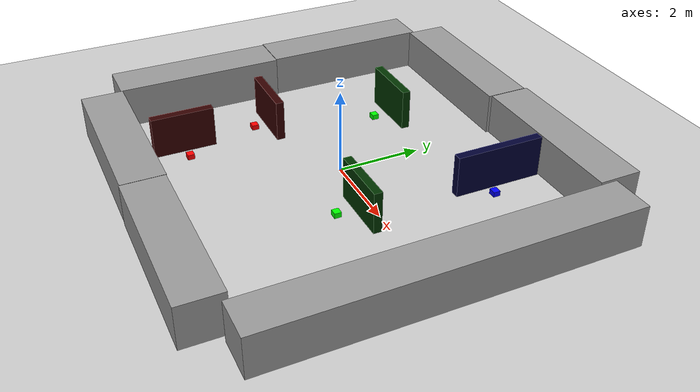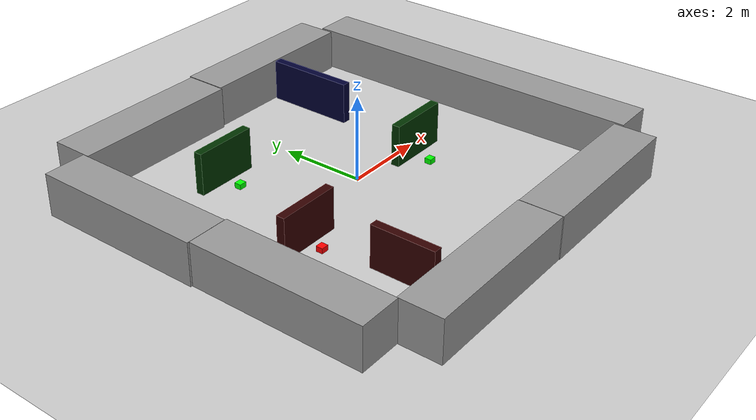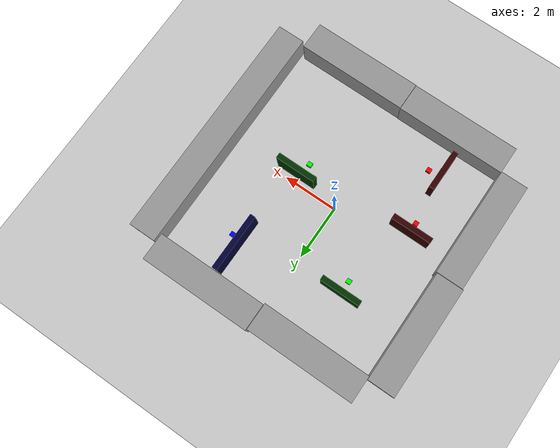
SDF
<sdf version="1.7">
 <world name="default">
  <light name="sun" type="directional">
   <cast_shadows>0</cast_shadows>
   <pose>0 0 10 0 -0 0</pose>
   <diffuse>0.8 0.8 0.8 1</diffuse>
   <specular>0.2 0.2 0.2 1</specular>
   <attenuation>
    <range>1000</range>
    <constant>0.9</constant>
    <linear>0.01</linear>
    <quadratic>0.001</quadratic>
   </attenuation>
   <direction>-0.5 0.1 -0.9</direction>
   <spot><inner_angle>0</inner_angle><outer_angle>0</outer_angle><falloff>0</falloff></spot>
  </light>
  <model name="ground_plane">
   <static>1</static>
   <link name="link">
    <collision name="collision">
     <geometry><plane><normal>0 0 1</normal><size>100 100</size></plane></geometry>
     <surface><friction><ode><mu>100</mu><mu2>50</mu2></ode></friction></surface>
    </collision>
    <visual name="visual">
     <cast_shadows>0</cast_shadows>
     <geometry><plane><normal>0 0 1</normal><size>100 100</size></plane></geometry>
     <material>
      <script><uri>file://media/materials/scripts/gazebo.material</uri><name>Gazebo/Grey</name></script>
     </material>
    </visual>
   </link>
  </model>
  <gravity>0 0 -9.8</gravity>
  <scene><ambient>0.4 0.4 0.4 1</ambient><background>0.7 0.7 0.7 1</background><shadows>1</shadows></scene>
  <magnetic_field>6e-06 2.3e-05 -4.2e-05</magnetic_field>
  <atmosphere type="adiabatic"/>
  <physics type="ode">
   <max_step_size>0.001</max_step_size>
   <real_time_factor>1</real_time_factor>
   <real_time_update_rate>1000</real_time_update_rate>
  </physics>
  <audio><device>default</device></audio>
  <spherical_coordinates>
   <surface_model>EARTH_WGS84</surface_model>
   <latitude_deg>0</latitude_deg>
   <longitude_deg>0</longitude_deg>
   <elevation>0</elevation>
   <heading_deg>0</heading_deg>
  </spherical_coordinates>
  <model name="unit_box_clone">
   <pose>4.65224 0.107863 0.477696 0.005228 -1.4e-05 0.002759</pose>
   <link name="link">
    <inertial>
     <mass>1</mass>
     <inertia>
      <ixx>0.166667</ixx>
      <ixy>0</ixy>
      <ixz>0</ixz>
      <iyy>0.166667</iyy>
      <iyz>0</iyz>
      <izz>0.166667</izz>
     </inertia>
    </inertial>
    <collision name="collision"><geometry><box><size>1 8.54504 1</size></box></geometry></collision>
    <visual name="visual">
     <geometry><box><size>1 8.54504 1</size></box></geometry>
     <material>
      <script><name>Gazebo/Grey</name><uri>file://media/materials/scripts/gazebo.material</uri></script>
     </material>
    </visual>
   </link>
  </model>
  <model name="unit_box_0">
   <pose>2.03487 4.53885 0.499174 0 0.000405 0.00123</pose>
   <link name="link">
    <inertial>
     <mass>1</mass>
     <inertia>
      <ixx>0.166667</ixx>
      <ixy>0</ixy>
      <ixz>0</ixz>
      <iyy>0.166667</iyy>
      <iyz>0</iyz>
      <izz>0.166667</izz>
     </inertia>
    </inertial>
    <collision name="collision"><geometry><box><size>4.08527 1 1</size></box></geometry></collision>
    <visual name="visual">
     <geometry><box><size>4.08527 1 1</size></box></geometry>
     <material>
      <script><name>Gazebo/Grey</name><uri>file://media/materials/scripts/gazebo.material</uri></script>
     </material>
    </visual>
   </link>
  </model>
  <model name="unit_box_0_clone">
   <pose>-2.03465 4.47648 0.499239 0 0.000379 7e-06</pose>
   <link name="link">
    <inertial>
     <mass>1</mass>
     <inertia>
      <ixx>0.166667</ixx>
      <ixy>0</ixy>
      <ixz>0</ixz>
      <iyy>0.166667</iyy>
      <iyz>0</iyz>
      <izz>0.166667</izz>
     </inertia>
    </inertial>
    <collision name="collision"><geometry><box><size>4.01582 1 1</size></box></geometry></collision>
    <visual name="visual">
     <geometry><box><size>4.01582 1 1</size></box></geometry>
     <material>
      <script><name>Gazebo/Grey</name><uri>file://media/materials/scripts/gazebo.material</uri></script>
     </material>
    </visual>
   </link>
  </model>
  <model name="unit_box_0_clone_clone">
   <pose>2.02264 -4.50797 0.499239 0 0.000379 -0.000906</pose>
   <link name="link">
    <inertial>
     <mass>1</mass>
     <inertia>
      <ixx>0.166667</ixx>
      <ixy>0</ixy>
      <ixz>0</ixz>
      <iyy>0.166667</iyy>
      <iyz>0</iyz>
      <izz>0.166667</izz>
     </inertia>
    </inertial>
    <collision name="collision"><geometry><box><size>4.01582 1 1</size></box></geometry></collision>
    <visual name="visual">
     <geometry><box><size>4.01582 1 1</size></box></geometry>
     <material>
      <script><name>Gazebo/Grey</name><uri>file://media/materials/scripts/gazebo.material</uri></script>
     </material>
    </visual>
   </link>
  </model>
  <model name="unit_box_clone_0">
   <pose>-4.5113 -2.00195 0.499196 -0.000396 -0 -6e-05</pose>
   <link name="link">
    <inertial>
     <mass>1</mass>
     <inertia>
      <ixx>0.166667</ixx>
      <ixy>0</ixy>
      <ixz>0</ixz>
      <iyy>0.166667</iyy>
      <iyz>0</iyz>
      <izz>0.166667</izz>
     </inertia>
    </inertial>
    <collision name="collision"><geometry><box><size>1 4.0622 1</size></box></geometry></collision>
    <visual name="visual">
     <geometry><box><size>1 4.0622 1</size></box></geometry>
     <material>
      <script><name>Gazebo/Grey</name><uri>file://media/materials/scripts/gazebo.material</uri></script>
     </material>
    </visual>
   </link>
  </model>
  <model name="unit_box_clone_1">
   <pose>-4.55198 2.06808 0.499196 0.000396 -0 0.000113</pose>
   <link name="link">
    <inertial>
     <mass>1</mass>
     <inertia>
      <ixx>0.166667</ixx>
      <ixy>0</ixy>
      <ixz>0</ixz>
      <iyy>0.166667</iyy>
      <iyz>0</iyz>
      <izz>0.166667</izz>
     </inertia>
    </inertial>
    <collision name="collision"><geometry><box><size>1 4.0622 1</size></box></geometry></collision>
    <visual name="visual">
     <geometry><box><size>1 4.0622 1</size></box></geometry>
     <material>
      <script><name>Gazebo/Grey</name><uri>file://media/materials/scripts/gazebo.material</uri></script>
     </material>
    </visual>
   </link>
  </model>
  <model name="unit_box_0_clone_clone_clone">
   <pose>-2.00291 -4.49151 0.499239 0 -0.000379 -0.00025</pose>
   <link name="link">
    <inertial>
     <mass>1</mass>
     <inertia>
      <ixx>0.166667</ixx>
      <ixy>0</ixy>
      <ixz>0</ixz>
      <iyy>0.166667</iyy>
      <iyz>0</iyz>
      <izz>0.166667</izz>
     </inertia>
    </inertial>
    <collision name="collision"><geometry><box><size>4.01582 1 1</size></box></geometry></collision>
    <visual name="visual">
     <geometry><box><size>4.01582 1 1</size></box></geometry>
     <material>
      <script><name>Gazebo/Grey</name><uri>file://media/materials/scripts/gazebo.material</uri></script>
     </material>
    </visual>
   </link>
  </model>
  <model name="unit_box_1_clone_1_clone_clone_1">
   <link name="link">
    <inertial>
     <mass>1</mass>
     <inertia>
      <ixx>0.166667</ixx>
      <ixy>0</ixy>
      <ixz>0</ixz>
      <iyy>0.166667</iyy>
      <iyz>0</iyz>
      <izz>0.166667</izz>
     </inertia>
    </inertial>
    <visual name="visual">
     <geometry><box><size>0.177426 0.164052 0.124949</size></box></geometry>
     <material>
      <script><name>Gazebo/Grey</name><uri>file://media/materials/scripts/gazebo.material</uri></script>
      <shader type="pixel"><normal_map>__default__</normal_map></shader>
      <ambient>0 0 1 1</ambient>
      <diffuse>0 0 1 1</diffuse>
      <specular>0 0 1 1</specular>
      <emissive>0 0 1 1</emissive>
      <lighting>1</lighting>
     </material>
    </visual>
    <collision name="collision">
     <geometry><box><size>0.177426 0.164052 0.124949</size></box></geometry>
     <surface>
      <friction>
       <ode><mu>1</mu><mu2>1</mu2><fdir1>0 0 0</fdir1><slip1>0</slip1><slip2>0</slip2></ode>
       <torsional>
        <coefficient>1</coefficient>
        <patch_radius>0</patch_radius>
        <surface_radius>0</surface_radius>
        <use_patch_radius>1</use_patch_radius>
        <ode><slip>0</slip></ode>
       </torsional>
      </friction>
      <bounce><restitution_coefficient>0</restitution_coefficient><threshold>1e+06</threshold></bounce>
      <contact>
       <collide_without_contact>0</collide_without_contact>
       <collide_without_contact_bitmask>1</collide_without_contact_bitmask>
       <collide_bitmask>1</collide_bitmask>
       <ode>
        <soft_cfm>0</soft_cfm>
        <soft_erp>0.2</soft_erp>
        <kp>1e+13</kp>
        <kd>1</kd>
        <max_vel>0.01</max_vel>
        <min_depth>0</min_depth>
       </ode>
       <bullet>
        <split_impulse>1</split_impulse>
        <split_impulse_penetration_threshold>-0.01</split_impulse_penetration_threshold>
        <soft_cfm>0</soft_cfm>
        <soft_erp>0.2</soft_erp>
        <kp>1e+13</kp>
        <kd>1</kd>
       </bullet>
      </contact>
     </surface>
    </collision>
   </link>
   <static>0</static>
   <pose>2.33872 2.68409 0.062475 2e-06 3e-06 2e-06</pose>
  </model>
  <model name="unit_box_1_clone_1_clone">
   <link name="link">
    <inertial>
     <mass>1</mass>
     <inertia>
      <ixx>0.166667</ixx>
      <ixy>0</ixy>
      <ixz>0</ixz>
      <iyy>0.166667</iyy>
      <iyz>0</iyz>
      <izz>0.166667</izz>
     </inertia>
    </inertial>
    <visual name="visual">
     <geometry><box><size>0.177426 0.164052 0.124949</size></box></geometry>
     <material>
      <script><name>Gazebo/Grey</name><uri>file://media/materials/scripts/gazebo.material</uri></script>
      <shader type="pixel"><normal_map>__default__</normal_map></shader>
      <ambient>1 0 0 1</ambient>
      <diffuse>1 0 0 1</diffuse>
      <specular>1 0 0 1</specular>
      <emissive>1 0 0 1</emissive>
      <lighting>1</lighting>
     </material>
    </visual>
    <collision name="collision">
     <geometry><box><size>0.177426 0.164052 0.124949</size></box></geometry>
     <surface>
      <friction>
       <ode><mu>1</mu><mu2>1</mu2><fdir1>0 0 0</fdir1><slip1>0</slip1><slip2>0</slip2></ode>
       <torsional>
        <coefficient>1</coefficient>
        <patch_radius>0</patch_radius>
        <surface_radius>0</surface_radius>
        <use_patch_radius>1</use_patch_radius>
        <ode><slip>0</slip></ode>
       </torsional>
      </friction>
      <bounce><restitution_coefficient>0</restitution_coefficient><threshold>1e+06</threshold></bounce>
      <contact>
       <collide_without_contact>0</collide_without_contact>
       <collide_without_contact_bitmask>1</collide_without_contact_bitmask>
       <collide_bitmask>1</collide_bitmask>
       <ode>
        <soft_cfm>0</soft_cfm>
        <soft_erp>0.2</soft_erp>
        <kp>1e+13</kp>
        <kd>1</kd>
        <max_vel>0.01</max_vel>
        <min_depth>0</min_depth>
       </ode>
       <bullet>
        <split_impulse>1</split_impulse>
        <split_impulse_penetration_threshold>-0.01</split_impulse_penetration_threshold>
        <soft_cfm>0</soft_cfm>
        <soft_erp>0.2</soft_erp>
        <kp>1e+13</kp>
        <kd>1</kd>
       </bullet>
      </contact>
     </surface>
    </collision>
   </link>
   <static>0</static>
   <pose>-1.9458 -2.98574 0.062475 1e-06 -3e-06 -1.1e-05</pose>
  </model>
  <model name="unit_box_1_clone_1_clone_clone_3">
   <link name="link">
    <inertial>
     <mass>1</mass>
     <inertia>
      <ixx>0.166667</ixx>
      <ixy>0</ixy>
      <ixz>0</ixz>
      <iyy>0.166667</iyy>
      <iyz>0</iyz>
      <izz>0.166667</izz>
     </inertia>
    </inertial>
    <visual name="visual">
     <geometry><box><size>0.177426 0.164052 0.124949</size></box></geometry>
     <material>
      <script><name>Gazebo/Grey</name><uri>file://media/materials/scripts/gazebo.material</uri></script>
      <shader type="pixel"><normal_map>__default__</normal_map></shader>
      <ambient>1 0 0 1</ambient>
      <diffuse>1 0 0 1</diffuse>
      <specular>1 0 0 1</specular>
      <emissive>1 0 0 1</emissive>
      <lighting>1</lighting>
     </material>
    </visual>
    <collision name="collision">
     <geometry><box><size>0.177426 0.164052 0.124949</size></box></geometry>
     <surface>
      <friction>
       <ode><mu>1</mu><mu2>1</mu2><fdir1>0 0 0</fdir1><slip1>0</slip1><slip2>0</slip2></ode>
       <torsional>
        <coefficient>1</coefficient>
        <patch_radius>0</patch_radius>
        <surface_radius>0</surface_radius>
        <use_patch_radius>1</use_patch_radius>
        <ode><slip>0</slip></ode>
       </torsional>
      </friction>
      <bounce><restitution_coefficient>0</restitution_coefficient><threshold>1e+06</threshold></bounce>
      <contact>
       <collide_without_contact>0</collide_without_contact>
       <collide_without_contact_bitmask>1</collide_without_contact_bitmask>
       <collide_bitmask>1</collide_bitmask>
       <ode>
        <soft_cfm>0</soft_cfm>
        <soft_erp>0.2</soft_erp>
        <kp>1e+13</kp>
        <kd>1</kd>
        <max_vel>0.01</max_vel>
        <min_depth>0</min_depth>
       </ode>
       <bullet>
        <split_impulse>1</split_impulse>
        <split_impulse_penetration_threshold>-0.01</split_impulse_penetration_threshold>
        <soft_cfm>0</soft_cfm>
        <soft_erp>0.2</soft_erp>
        <kp>1e+13</kp>
        <kd>1</kd>
       </bullet>
      </contact>
     </surface>
    </collision>
   </link>
   <static>0</static>
   <pose>-2.59871 -1.14635 0.062474 -3e-06 -3e-06 6e-06</pose>
  </model>
  <model name="unit_box_1_clone_1_clone_clone_2_clone">
   <link name="link">
    <inertial>
     <mass>1</mass>
     <inertia>
      <ixx>0.166667</ixx>
      <ixy>0</ixy>
      <ixz>0</ixz>
      <iyy>0.166667</iyy>
      <iyz>0</iyz>
      <izz>0.166667</izz>
     </inertia>
    </inertial>
    <visual name="visual">
     <geometry><box><size>0.177426 0.164052 0.124949</size></box></geometry>
     <material>
      <script><name>Gazebo/Grey</name><uri>file://media/materials/scripts/gazebo.material</uri></script>
      <shader type="pixel"><normal_map>__default__</normal_map></shader>
      <ambient>0 1 0 1</ambient>
      <diffuse>0 1 0 1</diffuse>
      <specular>0 1 0 1</specular>
      <emissive>0 1 0 1</emissive>
      <lighting>1</lighting>
     </material>
    </visual>
    <collision name="collision">
     <geometry><box><size>0.177426 0.164052 0.124949</size></box></geometry>
     <surface>
      <friction>
       <ode><mu>1</mu><mu2>1</mu2><fdir1>0 0 0</fdir1><slip1>0</slip1><slip2>0</slip2></ode>
       <torsional>
        <coefficient>1</coefficient>
        <patch_radius>0</patch_radius>
        <surface_radius>0</surface_radius>
        <use_patch_radius>1</use_patch_radius>
        <ode><slip>0</slip></ode>
       </torsional>
      </friction>
      <bounce><restitution_coefficient>0</restitution_coefficient><threshold>1e+06</threshold></bounce>
      <contact>
       <collide_without_contact>0</collide_without_contact>
       <collide_without_contact_bitmask>1</collide_without_contact_bitmask>
       <collide_bitmask>1</collide_bitmask>
       <ode>
        <soft_cfm>0</soft_cfm>
        <soft_erp>0.2</soft_erp>
        <kp>1e+13</kp>
        <kd>1</kd>
        <max_vel>0.01</max_vel>
        <min_depth>0</min_depth>
       </ode>
       <bullet>
        <split_impulse>1</split_impulse>
        <split_impulse_penetration_threshold>-0.01</split_impulse_penetration_threshold>
        <soft_cfm>0</soft_cfm>
        <soft_erp>0.2</soft_erp>
        <kp>1e+13</kp>
        <kd>1</kd>
       </bullet>
      </contact>
     </surface>
    </collision>
   </link>
   <static>0</static>
   <pose>1.58755 -0.821387 0.062474 -1e-06 4e-06 -1.4e-05</pose>
  </model>
  <model name="unit_box_1_clone_1_clone_clone_2">
   <link name="link">
    <inertial>
     <mass>1</mass>
     <inertia>
      <ixx>0.166667</ixx>
      <ixy>0</ixy>
      <ixz>0</ixz>
      <iyy>0.166667</iyy>
      <iyz>0</iyz>
      <izz>0.166667</izz>
     </inertia>
    </inertial>
    <visual name="visual">
     <geometry><box><size>0.177426 0.164052 0.124949</size></box></geometry>
     <material>
      <script><name>Gazebo/Grey</name><uri>file://media/materials/scripts/gazebo.material</uri></script>
      <shader type="pixel"><normal_map>__default__</normal_map></shader>
      <ambient>0 0 1 1</ambient>
      <diffuse>0 1 0 1</diffuse>
      <specular>0 1 0 1</specular>
      <emissive>0 1 0 1</emissive>
      <lighting>1</lighting>
     </material>
    </visual>
    <collision name="collision">
     <geometry><box><size>0.177426 0.164052 0.124949</size></box></geometry>
     <surface>
      <friction>
       <ode><mu>1</mu><mu2>1</mu2><fdir1>0 0 0</fdir1><slip1>0</slip1><slip2>0</slip2></ode>
       <torsional>
        <coefficient>1</coefficient>
        <patch_radius>0</patch_radius>
        <surface_radius>0</surface_radius>
        <use_patch_radius>1</use_patch_radius>
        <ode><slip>0</slip></ode>
       </torsional>
      </friction>
      <bounce><restitution_coefficient>0</restitution_coefficient><threshold>1e+06</threshold></bounce>
      <contact>
       <collide_without_contact>0</collide_without_contact>
       <collide_without_contact_bitmask>1</collide_without_contact_bitmask>
       <collide_bitmask>1</collide_bitmask>
       <ode>
        <soft_cfm>0</soft_cfm>
        <soft_erp>0.2</soft_erp>
        <kp>1e+13</kp>
        <kd>1</kd>
        <max_vel>0.01</max_vel>
        <min_depth>0</min_depth>
       </ode>
       <bullet>
        <split_impulse>1</split_impulse>
        <split_impulse_penetration_threshold>-0.01</split_impulse_penetration_threshold>
        <soft_cfm>0</soft_cfm>
        <soft_erp>0.2</soft_erp>
        <kp>1e+13</kp>
        <kd>1</kd>
       </bullet>
      </contact>
     </surface>
    </collision>
   </link>
   <static>0</static>
   <pose>-1.81227 1.7855 0.062474 -3e-06 3e-06 -1e-05</pose>
  </model>
  <model name="unit_box_1">
   <link name="link">
    <inertial>
     <mass>1</mass>
     <inertia>
      <ixx>0.166667</ixx>
      <ixy>0</ixy>
      <ixz>0</ixz>
      <iyy>0.166667</iyy>
      <iyz>0</iyz>
      <izz>0.166667</izz>
     </inertia>
    </inertial>
    <visual name="visual">
     <geometry><box><size>1.50144 0.197957 1</size></box></geometry>
     <material>
      <script><name>Gazebo/Grey</name><uri>file://media/materials/scripts/gazebo.material</uri></script>
      <shader type="pixel"><normal_map>__default__</normal_map></shader>
      <ambient>0 0.2 0 0</ambient>
      <diffuse>0.7 0.7 0.7 1</diffuse>
      <specular>0.01 0.01 0.01 1</specular>
      <emissive>0 0 0 1</emissive>
     </material>
    </visual>
    <collision name="collision">
     <geometry><box><size>1.50144 0.197957 1</size></box></geometry>
     <surface>
      <friction>
       <ode><mu>1</mu><mu2>1</mu2><fdir1>0 0 0</fdir1><slip1>0</slip1><slip2>0</slip2></ode>
       <torsional>
        <coefficient>1</coefficient>
        <patch_radius>0</patch_radius>
        <surface_radius>0</surface_radius>
        <use_patch_radius>1</use_patch_radius>
        <ode><slip>0</slip></ode>
       </torsional>
      </friction>
      <bounce><restitution_coefficient>0</restitution_coefficient><threshold>1e+06</threshold></bounce>
      <contact>
       <collide_without_contact>0</collide_without_contact>
       <collide_without_contact_bitmask>1</collide_without_contact_bitmask>
       <collide_bitmask>1</collide_bitmask>
       <ode>
        <soft_cfm>0</soft_cfm>
        <soft_erp>0.2</soft_erp>
        <kp>1e+13</kp>
        <kd>1</kd>
        <max_vel>0.01</max_vel>
        <min_depth>0</min_depth>
       </ode>
       <bullet>
        <split_impulse>1</split_impulse>
        <split_impulse_penetration_threshold>-0.01</split_impulse_penetration_threshold>
        <soft_cfm>0</soft_cfm>
        <soft_erp>0.2</soft_erp>
        <kp>1e+13</kp>
        <kd>1</kd>
       </bullet>
      </contact>
     </surface>
    </collision>
   </link>
   <static>0</static>
   <pose>1.73783 -0.290121 0.5 1e-06 -0 0</pose>
  </model>
  <model name="unit_box_1_clone">
   <link name="link">
    <inertial>
     <mass>1</mass>
     <inertia>
      <ixx>0.166667</ixx>
      <ixy>0</ixy>
      <ixz>0</ixz>
      <iyy>0.166667</iyy>
      <iyz>0</iyz>
      <izz>0.166667</izz>
     </inertia>
    </inertial>
    <visual name="visual">
     <geometry><box><size>2.13517 0.197957 1</size></box></geometry>
     <material>
      <script><name>Gazebo/Grey</name><uri>file://media/materials/scripts/gazebo.material</uri></script>
      <shader type="pixel"><normal_map>__default__</normal_map></shader>
      <ambient>0 0 0.2 0</ambient>
      <diffuse>0.7 0.7 0.7 1</diffuse>
      <specular>0.01 0.01 0.01 1</specular>
      <emissive>0 0 0 1</emissive>
     </material>
    </visual>
    <collision name="collision">
     <geometry><box><size>2.13517 0.197957 1</size></box></geometry>
     <surface>
      <friction>
       <ode><mu>1</mu><mu2>1</mu2><fdir1>0 0 0</fdir1><slip1>0</slip1><slip2>0</slip2></ode>
       <torsional>
        <coefficient>1</coefficient>
        <patch_radius>0</patch_radius>
        <surface_radius>0</surface_radius>
        <use_patch_radius>1</use_patch_radius>
        <ode><slip>0</slip></ode>
       </torsional>
      </friction>
      <bounce><restitution_coefficient>0</restitution_coefficient><threshold>1e+06</threshold></bounce>
      <contact>
       <collide_without_contact>0</collide_without_contact>
       <collide_without_contact_bitmask>1</collide_without_contact_bitmask>
       <collide_bitmask>1</collide_bitmask>
       <ode>
        <soft_cfm>0</soft_cfm>
        <soft_erp>0.2</soft_erp>
        <kp>1e+13</kp>
        <kd>1</kd>
        <max_vel>0.01</max_vel>
        <min_depth>0</min_depth>
       </ode>
       <bullet>
        <split_impulse>1</split_impulse>
        <split_impulse_penetration_threshold>-0.01</split_impulse_penetration_threshold>
        <soft_cfm>0</soft_cfm>
        <soft_erp>0.2</soft_erp>
        <kp>1e+13</kp>
        <kd>1</kd>
       </bullet>
      </contact>
     </surface>
    </collision>
   </link>
   <static>0</static>
   <pose>1.97237 2.9366 0.499977 1e-06 2.1e-05 -1.57435</pose>
  </model>
  <model name="unit_box_1_clone_0">
   <link name="link">
    <inertial>
     <mass>1</mass>
     <inertia>
      <ixx>0.166667</ixx>
      <ixy>0</ixy>
      <ixz>0</ixz>
      <iyy>0.166667</iyy>
      <iyz>0</iyz>
      <izz>0.166667</izz>
     </inertia>
    </inertial>
    <visual name="visual">
     <geometry><box><size>1.50144 0.197957 1</size></box></geometry>
     <material>
      <script><name>Gazebo/Grey</name><uri>file://media/materials/scripts/gazebo.material</uri></script>
      <shader type="pixel"><normal_map>__default__</normal_map></shader>
      <ambient>0 0.2 0 0</ambient>
      <diffuse>0.7 0.7 0.7 1</diffuse>
      <specular>0.01 0.01 0.01 1</specular>
      <emissive>0 0 0 1</emissive>
     </material>
    </visual>
    <collision name="collision">
     <geometry><box><size>1.50144 0.197957 1</size></box></geometry>
     <surface>
      <friction>
       <ode><mu>1</mu><mu2>1</mu2><fdir1>0 0 0</fdir1><slip1>0</slip1><slip2>0</slip2></ode>
       <torsional>
        <coefficient>1</coefficient>
        <patch_radius>0</patch_radius>
        <surface_radius>0</surface_radius>
        <use_patch_radius>1</use_patch_radius>
        <ode><slip>0</slip></ode>
       </torsional>
      </friction>
      <bounce><restitution_coefficient>0</restitution_coefficient><threshold>1e+06</threshold></bounce>
      <contact>
       <collide_without_contact>0</collide_without_contact>
       <collide_without_contact_bitmask>1</collide_without_contact_bitmask>
       <collide_bitmask>1</collide_bitmask>
       <ode>
        <soft_cfm>0</soft_cfm>
        <soft_erp>0.2</soft_erp>
        <kp>1e+13</kp>
        <kd>1</kd>
        <max_vel>0.01</max_vel>
        <min_depth>0</min_depth>
       </ode>
       <bullet>
        <split_impulse>1</split_impulse>
        <split_impulse_penetration_threshold>-0.01</split_impulse_penetration_threshold>
        <soft_cfm>0</soft_cfm>
        <soft_erp>0.2</soft_erp>
        <kp>1e+13</kp>
        <kd>1</kd>
       </bullet>
      </contact>
     </surface>
    </collision>
   </link>
   <static>0</static>
   <pose>-1.79997 2.26497 0.5 1e-06 -0 0</pose>
  </model>
  <model name="unit_box_1_clone_0_clone">
   <link name="link">
    <inertial>
     <mass>1</mass>
     <inertia>
      <ixx>0.166667</ixx>
      <ixy>0</ixy>
      <ixz>0</ixz>
      <iyy>0.166667</iyy>
      <iyz>0</iyz>
      <izz>0.166667</izz>
     </inertia>
    </inertial>
    <visual name="visual">
     <geometry><box><size>1.50144 0.197957 1</size></box></geometry>
     <material>
      <script><name>Gazebo/Grey</name><uri>file://media/materials/scripts/gazebo.material</uri></script>
      <shader type="pixel"><normal_map>__default__</normal_map></shader>
      <ambient>0.2 0 0 0</ambient>
      <diffuse>0.7 0.7 0.7 1</diffuse>
      <specular>0.01 0.01 0.01 1</specular>
      <emissive>0 0 0 1</emissive>
     </material>
    </visual>
    <collision name="collision">
     <geometry><box><size>1.50144 0.197957 1</size></box></geometry>
     <surface>
      <friction>
       <ode><mu>1</mu><mu2>1</mu2><fdir1>0 0 0</fdir1><slip1>0</slip1><slip2>0</slip2></ode>
       <torsional>
        <coefficient>1</coefficient>
        <patch_radius>0</patch_radius>
        <surface_radius>0</surface_radius>
        <use_patch_radius>1</use_patch_radius>
        <ode><slip>0</slip></ode>
       </torsional>
      </friction>
      <bounce><restitution_coefficient>0</restitution_coefficient><threshold>1e+06</threshold></bounce>
      <contact>
       <collide_without_contact>0</collide_without_contact>
       <collide_without_contact_bitmask>1</collide_without_contact_bitmask>
       <collide_bitmask>1</collide_bitmask>
       <ode>
        <soft_cfm>0</soft_cfm>
        <soft_erp>0.2</soft_erp>
        <kp>1e+13</kp>
        <kd>1</kd>
        <max_vel>0.01</max_vel>
        <min_depth>0</min_depth>
       </ode>
       <bullet>
        <split_impulse>1</split_impulse>
        <split_impulse_penetration_threshold>-0.01</split_impulse_penetration_threshold>
        <soft_cfm>0</soft_cfm>
        <soft_erp>0.2</soft_erp>
        <kp>1e+13</kp>
        <kd>1</kd>
       </bullet>
      </contact>
     </surface>
    </collision>
   </link>
   <static>0</static>
   <pose>-2.59021 -0.735207 0.5 1e-06 -0 0</pose>
  </model>
  <model name="unit_box_1_clone_1">
   <link name="link">
    <inertial>
     <mass>1</mass>
     <inertia>
      <ixx>0.166667</ixx>
      <ixy>0</ixy>
      <ixz>0</ixz>
      <iyy>0.166667</iyy>
      <iyz>0</iyz>
      <izz>0.166667</izz>
     </inertia>
    </inertial>
    <visual name="visual">
     <geometry><box><size>1.50144 0.197957 1</size></box></geometry>
     <material>
      <script><name>Gazebo/Grey</name><uri>file://media/materials/scripts/gazebo.material</uri></script>
      <shader type="pixel"><normal_map>__default__</normal_map></shader>
      <ambient>0.2 0 0 0</ambient>
      <diffuse>0.7 0.7 0.7 1</diffuse>
      <specular>0.01 0.01 0.01 1</specular>
      <emissive>0 0 0 1</emissive>
     </material>
    </visual>
    <collision name="collision">
     <geometry><box><size>1.50144 0.197957 1</size></box></geometry>
     <surface>
      <friction>
       <ode><mu>1</mu><mu2>1</mu2><fdir1>0 0 0</fdir1><slip1>0</slip1><slip2>0</slip2></ode>
       <torsional>
        <coefficient>1</coefficient>
        <patch_radius>0</patch_radius>
        <surface_radius>0</surface_radius>
        <use_patch_radius>1</use_patch_radius>
        <ode><slip>0</slip></ode>
       </torsional>
      </friction>
      <bounce><restitution_coefficient>0</restitution_coefficient><threshold>1e+06</threshold></bounce>
      <contact>
       <collide_without_contact>0</collide_without_contact>
       <collide_without_contact_bitmask>1</collide_without_contact_bitmask>
       <collide_bitmask>1</collide_bitmask>
       <ode>
        <soft_cfm>0</soft_cfm>
        <soft_erp>0.2</soft_erp>
        <kp>1e+13</kp>
        <kd>1</kd>
        <max_vel>0.01</max_vel>
        <min_depth>0</min_depth>
       </ode>
       <bullet>
        <split_impulse>1</split_impulse>
        <split_impulse_penetration_threshold>-0.01</split_impulse_penetration_threshold>
        <soft_cfm>0</soft_cfm>
        <soft_erp>0.2</soft_erp>
        <kp>1e+13</kp>
        <kd>1</kd>
       </bullet>
      </contact>
     </surface>
    </collision>
   </link>
   <static>0</static>
   <pose>-2.38057 -2.99362 0.5 -1e-06 -0 -1.57503</pose>
  </model>
 </world>
</sdf>
